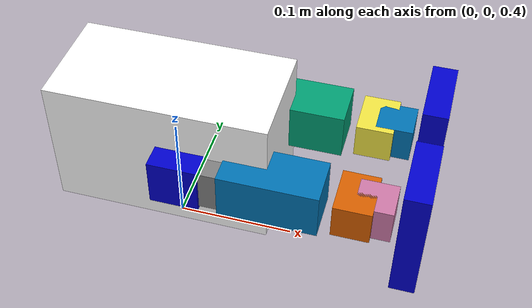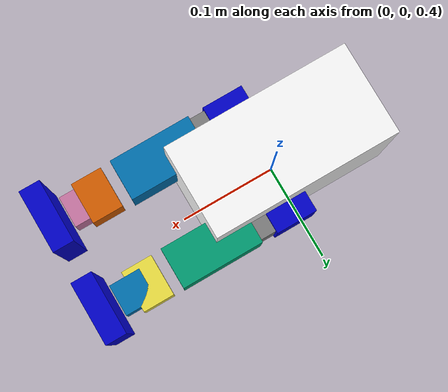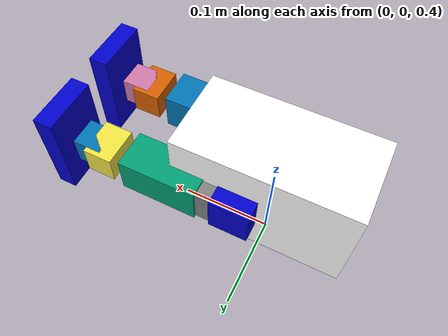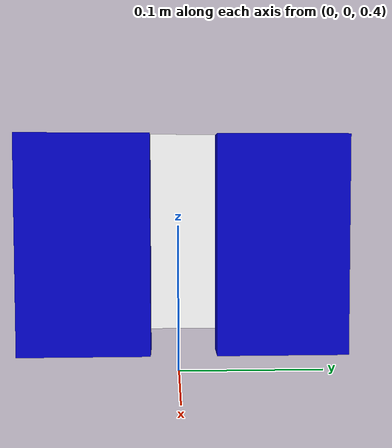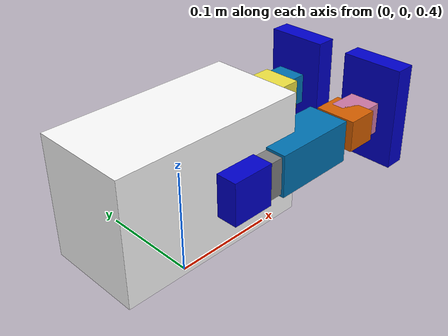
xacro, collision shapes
<?xml version="1.0"?>
<robot xmlns:xacro="http://www.ros.org/wiki/xacro" name="alpha1s">

    <material name="white"><color rgba="1 1 1 1"/></material>
    <material name="blue"><color rgba="0 0 0.8 1"/></material>
    <material name="grey"><color rgba="0.5 0.5 0.5 1"/></material>

    <!-- World Anchor                                                  -->
    <!-- NOTE: rpy="0 -1.5708 0" compensa la orientación de los       -->
    <!-- meshes STL (exportados con X-forward). Ajustar si los meshes  -->
    <!-- se re-exportan con Z-up.                                      -->
    <link name="world_root"/>
    <joint name="world_joint" type="fixed">
        <parent link="world_root"/>
        <child link="base_link"/>
        <origin xyz="0 0 0.5" rpy="0 -1.5708 0"/>
    </joint>

    <!-- Torso (Base Link)                                             -->
    <link name="base_link">
        <visual>
            <origin xyz="0 0 0" rpy="0 0 0"/>
            <geometry><mesh filename="package://alpha1s_bringup/meshes/base_link.stl"/></geometry>
            <material name="white"/>
        </visual>
        <collision>
            <origin xyz="0 0 0" rpy="0 0 0"/>
            <geometry><box size="0.113 0.09 0.18"/></geometry>
        </collision>
        <inertial>
            <mass value="0.73"/>
            <inertia ixx="0.00285" ixy="0" ixz="0"
                     iyy="0.00285" iyz="0"
                     izz="0.00175"/>
        </inertial>
    </link>

    <!-- ===============  PIERNA DERECHA (5 DOF)  =================== -->

    <!-- 1. Hip Roll (eje X) -->
    <joint name="r_hip_roll_joint" type="revolute">
        <parent link="base_link"/>
        <child link="r_hip_roll_link"/>
        <origin xyz="0.0 -0.045 -0.02" rpy="0 0 0"/>
        <axis xyz="1 0 0"/>
        <limit lower="-0.5" upper="0.5" effort="10" velocity="1.0"/>
    </joint>

    <link name="r_hip_roll_link">
        <visual>
            <origin xyz="0 0.045 0.02" rpy="0 0 0"/>
            <geometry><mesh filename="package://alpha1s_bringup/meshes/r_hip_roll_link.stl"/></geometry>
            <material name="blue"/>
        </visual>
        <collision><geometry><box size="0.04 0.04 0.04"/></geometry></collision>
        <inertial>
            <mass value="0.08"/>
            <inertia ixx="0.00002" ixy="0" ixz="0"
                     iyy="0.00002" iyz="0"
                     izz="0.00002"/>
        </inertial>
    </link>

    <!-- 2. Hip Pitch (eje Y) — NUEVO: permite balanceo adelante/atrás -->
    <joint name="r_hip_pitch_joint" type="revolute">
        <parent link="r_hip_roll_link"/>
        <child link="r_hip_pitch_link"/>
        <origin xyz="0.0 0.0 -0.025" rpy="0 0 0"/>
        <axis xyz="0 1 0"/>
        <limit lower="-0.8" upper="0.8" effort="10" velocity="1.0"/>
    </joint>

    <link name="r_hip_pitch_link">
        <visual>
            <geometry><box size="0.035 0.035 0.025"/></geometry>
            <material name="grey"/>
        </visual>
        <collision><geometry><box size="0.035 0.035 0.025"/></geometry></collision>
        <inertial>
            <mass value="0.05"/>
            <inertia ixx="0.00001" ixy="0" ixz="0"
                     iyy="0.00001" iyz="0"
                     izz="0.00001"/>
        </inertial>
    </link>

    <!-- 3. Knee (eje Y) -->
    <joint name="r_knee_joint" type="revolute">
        <parent link="r_hip_pitch_link"/>
        <child link="r_knee_link"/>
        <origin xyz="0.0 0.0 -0.05" rpy="0 0 0"/>
        <axis xyz="0 1 0"/>
        <limit lower="-1.5" upper="0.0" effort="10" velocity="1.0"/>
    </joint>

    <link name="r_knee_link">
        <visual>
            <origin xyz="0 0.045 0.095" rpy="0 0 0"/>
            <geometry><mesh filename="package://alpha1s_bringup/meshes/r_knee_link.stl"/></geometry>
        </visual>
        <collision><geometry><box size="0.04 0.04 0.08"/></geometry></collision>
        <inertial>
            <mass value="0.12"/>
            <inertia ixx="0.00008" ixy="0" ixz="0"
                     iyy="0.00008" iyz="0"
                     izz="0.00003"/>
        </inertial>
    </link>

    <!-- 4. Ankle Pitch (eje Y) -->
    <joint name="r_ankle_pitch_joint" type="revolute">
        <parent link="r_knee_link"/>
        <child link="r_ankle_pitch_link"/>
        <origin xyz="0.0 0.0 -0.065" rpy="0 0 0"/>
        <axis xyz="0 1 0"/>
        <limit lower="-0.5" upper="0.5" effort="10" velocity="1.0"/>
    </joint>

    <link name="r_ankle_pitch_link">
        <visual>
            <origin xyz="0 0.045 0.16" rpy="0 0 0"/>
            <geometry><mesh filename="package://alpha1s_bringup/meshes/r_ankle_pitch_link.stl"/></geometry>
        </visual>
        <collision><geometry><box size="0.03 0.04 0.03"/></geometry></collision>
        <inertial>
            <mass value="0.07"/>
            <inertia ixx="0.00002" ixy="0" ixz="0"
                     iyy="0.00001" iyz="0"
                     izz="0.00002"/>
        </inertial>
    </link>

    <!-- 5. Ankle Roll (eje X) -->
    <joint name="r_ankle_roll_joint" type="revolute">
        <parent link="r_ankle_pitch_link"/>
        <child link="r_ankle_link"/>
        <origin xyz="0.0 0.0 -0.015" rpy="0 0 0"/>
        <axis xyz="1 0 0"/>
        <limit lower="-0.3" upper="0.3" effort="10" velocity="1.0"/>
    </joint>

    <link name="r_ankle_link">
        <visual>
            <origin xyz="0 0.045 0.175" rpy="0 0 0"/>
            <geometry><mesh filename="package://alpha1s_bringup/meshes/r_ankle_link.stl"/></geometry>
        </visual>
        <collision><geometry><box size="0.03 0.03 0.03"/></geometry></collision>
        <inertial>
            <mass value="0.04"/>
            <inertia ixx="0.00001" ixy="0" ixz="0"
                     iyy="0.00001" iyz="0"
                     izz="0.00001"/>
        </inertial>
    </link>

    <!-- Foot (fijo) -->
    <joint name="r_foot_joint" type="fixed">
        <parent link="r_ankle_link"/>
        <child link="r_foot_link"/>
        <origin xyz="0.0 0.0 -0.02" rpy="0 0 0"/>
    </joint>

    <link name="r_foot_link">
        <visual>
            <origin xyz="0 0.045 0.195" rpy="0 0 0"/>
            <geometry><mesh filename="package://alpha1s_bringup/meshes/r_foot_link.stl"/></geometry>
            <material name="blue"/>
        </visual>
        <collision>
            <origin xyz="0 0 -0.01" rpy="0 0 0"/>
            <geometry><box size="0.1 0.06 0.02"/></geometry>
        </collision>
        <inertial>
            <mass value="0.10"/>
            <inertia ixx="0.00003" ixy="0" ixz="0"
                     iyy="0.00009" iyz="0"
                     izz="0.00011"/>
        </inertial>
    </link>

    <!-- ===============  PIERNA IZQUIERDA (5 DOF)  ================= -->

    <!-- 1. Hip Roll (eje X) -->
    <joint name="l_hip_roll_joint" type="revolute">
        <parent link="base_link"/>
        <child link="l_hip_roll_link"/>
        <origin xyz="0.0 0.045 -0.02" rpy="0 0 0"/>
        <axis xyz="1 0 0"/>
        <limit lower="-0.5" upper="0.5" effort="10" velocity="1.0"/>
    </joint>

    <link name="l_hip_roll_link">
        <visual>
            <origin xyz="0 -0.045 0.02" rpy="0 0 0"/>
            <geometry><mesh filename="package://alpha1s_bringup/meshes/l_hip_roll_link.stl"/></geometry>
            <material name="blue"/>
        </visual>
        <collision><geometry><box size="0.04 0.04 0.04"/></geometry></collision>
        <inertial>
            <mass value="0.08"/>
            <inertia ixx="0.00002" ixy="0" ixz="0"
                     iyy="0.00002" iyz="0"
                     izz="0.00002"/>
        </inertial>
    </link>

    <!-- 2. Hip Pitch (eje Y) — NUEVO -->
    <joint name="l_hip_pitch_joint" type="revolute">
        <parent link="l_hip_roll_link"/>
        <child link="l_hip_pitch_link"/>
        <origin xyz="0.0 0.0 -0.025" rpy="0 0 0"/>
        <axis xyz="0 1 0"/>
        <limit lower="-0.8" upper="0.8" effort="10" velocity="1.0"/>
    </joint>

    <link name="l_hip_pitch_link">
        <visual>
            <geometry><box size="0.035 0.035 0.025"/></geometry>
            <material name="grey"/>
        </visual>
        <collision><geometry><box size="0.035 0.035 0.025"/></geometry></collision>
        <inertial>
            <mass value="0.05"/>
            <inertia ixx="0.00001" ixy="0" ixz="0"
                     iyy="0.00001" iyz="0"
                     izz="0.00001"/>
        </inertial>
    </link>

    <!-- 3. Knee (eje Y) -->
    <joint name="l_knee_joint" type="revolute">
        <parent link="l_hip_pitch_link"/>
        <child link="l_knee_link"/>
        <origin xyz="0.0 0.0 -0.05" rpy="0 0 0"/>
        <axis xyz="0 1 0"/>
        <limit lower="-1.5" upper="0.0" effort="10" velocity="1.0"/>
    </joint>

    <link name="l_knee_link">
        <visual>
            <origin xyz="0 -0.045 0.095" rpy="0 0 0"/>
            <geometry><mesh filename="package://alpha1s_bringup/meshes/l_knee_link.stl"/></geometry>
        </visual>
        <collision><geometry><box size="0.04 0.04 0.08"/></geometry></collision>
        <inertial>
            <mass value="0.12"/>
            <inertia ixx="0.00008" ixy="0" ixz="0"
                     iyy="0.00008" iyz="0"
                     izz="0.00003"/>
        </inertial>
    </link>

    <!-- 4. Ankle Pitch (eje Y) -->
    <joint name="l_ankle_pitch_joint" type="revolute">
        <parent link="l_knee_link"/>
        <child link="l_ankle_pitch_link"/>
        <origin xyz="0.0 0.0 -0.065" rpy="0 0 0"/>
        <axis xyz="0 1 0"/>
        <limit lower="-0.5" upper="0.5" effort="10" velocity="1.0"/>
    </joint>

    <link name="l_ankle_pitch_link">
        <visual>
            <origin xyz="0 -0.045 0.16" rpy="0 0 0"/>
            <geometry><mesh filename="package://alpha1s_bringup/meshes/l_ankle_pitch_link.stl"/></geometry>
        </visual>
        <collision><geometry><box size="0.03 0.04 0.03"/></geometry></collision>
        <inertial>
            <mass value="0.07"/>
            <inertia ixx="0.00002" ixy="0" ixz="0"
                     iyy="0.00001" iyz="0"
                     izz="0.00002"/>
        </inertial>
    </link>

    <!-- 5. Ankle Roll (eje X) -->
    <joint name="l_ankle_roll_joint" type="revolute">
        <parent link="l_ankle_pitch_link"/>
        <child link="l_ankle_link"/>
        <origin xyz="0.0 0.0 -0.015" rpy="0 0 0"/>
        <axis xyz="1 0 0"/>
        <limit lower="-0.3" upper="0.3" effort="10" velocity="1.0"/>
    </joint>

    <link name="l_ankle_link">
        <visual>
            <origin xyz="0 -0.045 0.175" rpy="0 0 0"/>
            <geometry><mesh filename="package://alpha1s_bringup/meshes/l_ankle_link.stl"/></geometry>
        </visual>
        <collision><geometry><box size="0.03 0.03 0.03"/></geometry></collision>
        <inertial>
            <mass value="0.04"/>
            <inertia ixx="0.00001" ixy="0" ixz="0"
                     iyy="0.00001" iyz="0"
                     izz="0.00001"/>
        </inertial>
    </link>

    <!-- Foot (fijo) -->
    <joint name="l_foot_joint" type="fixed">
        <parent link="l_ankle_link"/>
        <child link="l_foot_link"/>
        <origin xyz="0.0 0.0 -0.02" rpy="0 0 0"/>
    </joint>

    <link name="l_foot_link">
        <visual>
            <origin xyz="0 -0.045 0.195" rpy="0 0 0"/>
            <geometry><mesh filename="package://alpha1s_bringup/meshes/l_foot_link.stl"/></geometry>
            <material name="blue"/>
        </visual>
        <collision>
            <origin xyz="0 0 -0.01" rpy="0 0 0"/>
            <geometry><box size="0.1 0.06 0.02"/></geometry>
        </collision>
        <inertial>
            <mass value="0.10"/>
            <inertia ixx="0.00003" ixy="0" ixz="0"
                     iyy="0.00009" iyz="0"
                     izz="0.00011"/>
        </inertial>
    </link>

    <!-- Gazebo: Propiedades de contacto para los pies                 -->
    <gazebo reference="r_foot_link">
        <mu1>1.0</mu1><mu2>1.0</mu2><kp>1000000.0</kp><kd>1.0</kd>
    </gazebo>
    <gazebo reference="l_foot_link">
        <mu1>1.0</mu1><mu2>1.0</mu2><kp>1000000.0</kp><kd>1.0</kd>
    </gazebo>

</robot>
